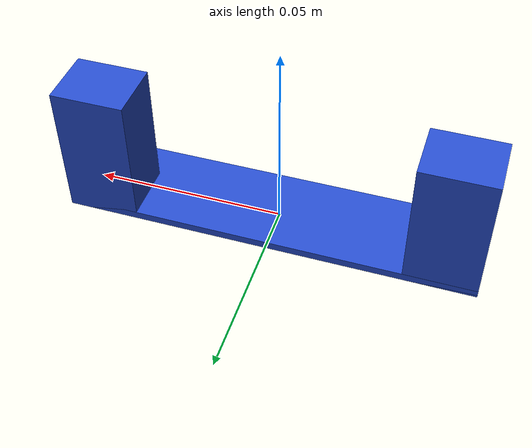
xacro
<?xml version="1.0"?>
<robot xmlns:xacro="http://www.ros.org/wiki/xacro">

    <link name="gripper_base">
        <visual>
            <geometry>
                <box size="0.107 0.02482 0.002" />
            </geometry>
            <origin xyz="0 0 0.001" rpy="0 0 0" />
            <material name="blue" />
        </visual>
        <collision>
            <geometry>
                <box size="0.107 0.02482 0.002" />
            </geometry>
            <origin xyz="0 0 0.001" rpy="0 0 0" />
        </collision>
    </link>

    <link name="gripper_finger_left">
        <visual>
            <geometry>
                <box size="0.01861 0.01550 0.03571" />
            </geometry>
            <origin xyz="-0.04419 0.00466 0.01785" rpy="0 0 0" />
            <material name="blue" />
        </visual>
        <collision>
            <geometry>
                <box size="0.01861 0.01550 0.03571" />
            </geometry>
            <origin xyz="-0.04419 0.00466 0.01785" rpy="0 0 0" />
        </collision>
    </link>

    <link name="gripper_finger_right">
        <visual>
            <geometry>
                <box size="0.01861 0.01550 0.03571" />
            </geometry>
            <origin xyz="0.04419 0.00466 0.01785" rpy="0 0 0" />
            <material name="blue" />
        </visual>
        <collision>
            <geometry>
                <box size="0.01861 0.01550 0.03571" />
            </geometry>
            <origin xyz="0.04419 0.00466 0.01785" rpy="0 0 0" />
        </collision>
    </link>

    <joint name="gripper_finger_left_joint" type="prismatic">
        <parent link="gripper_base" />
        <child link="gripper_finger_left" />
        <origin xyz="0 0 0" rpy="0 0 0" />
        <axis xyz="1 0 0" />
        <limit lower="0" upper="0.034" effort="20" velocity="0.1" />
    </joint>

    <joint name="gripper_finger_right_joint" type="prismatic">
        <parent link="gripper_base" />
        <child link="gripper_finger_right" />
        <origin xyz="0 0 0" rpy="0 0 0" />
        <axis xyz="1 0 0" />
        <mimic joint="gripper_finger_left_joint" multiplier="-1.0"/>
        <limit lower="-0.034" upper="0" effort="20" velocity="0.1" />
    </joint>

</robot>
